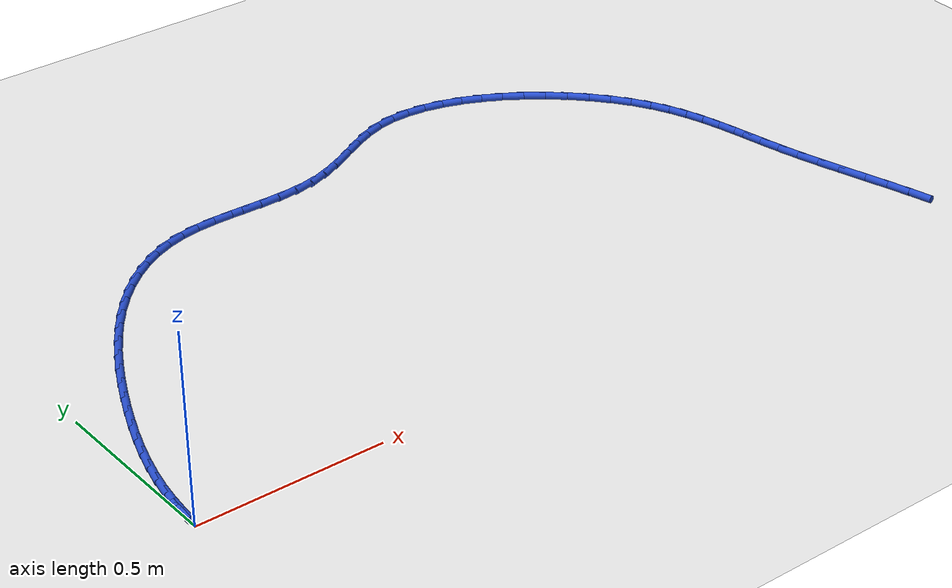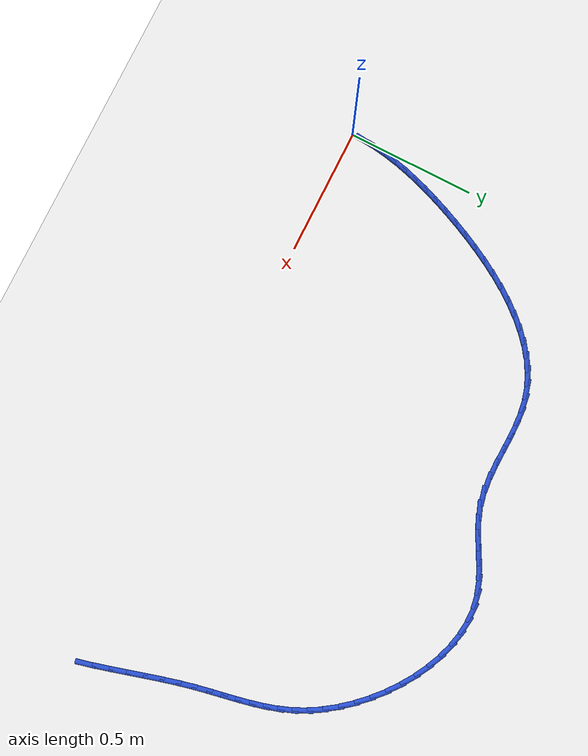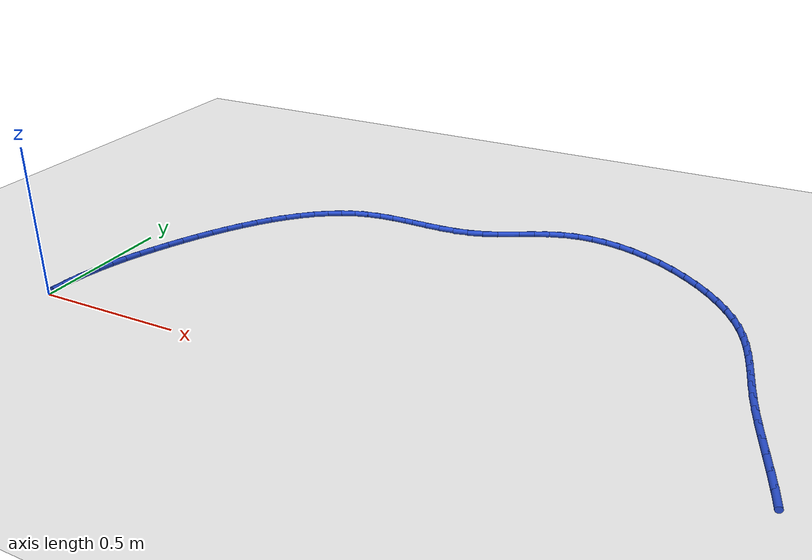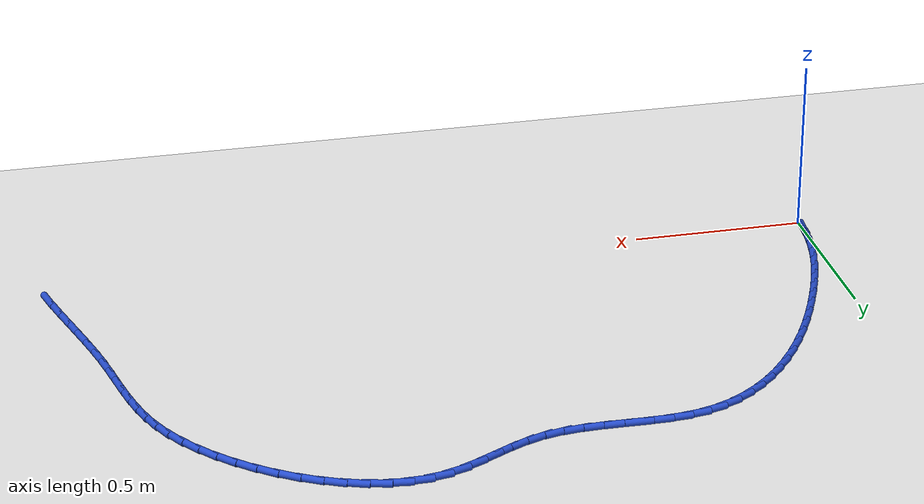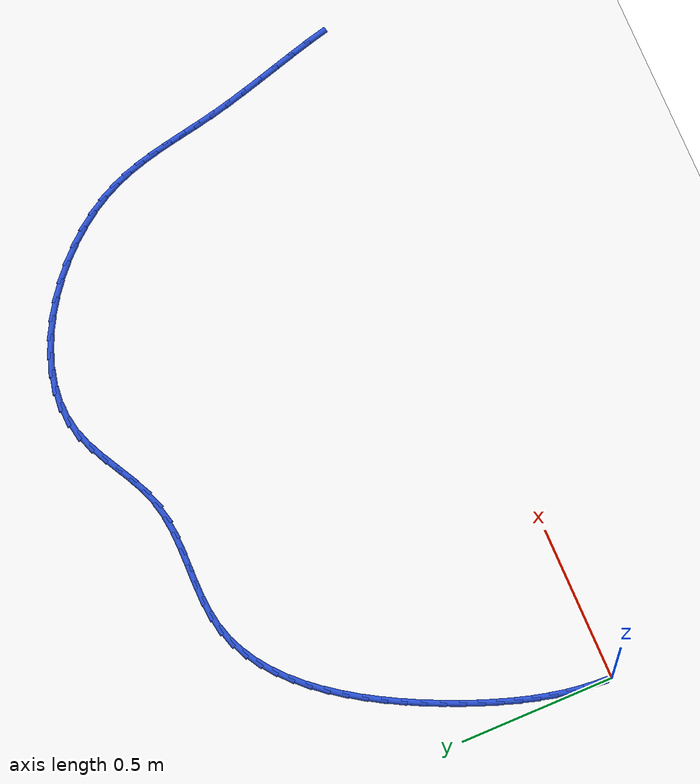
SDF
<sdf version="1.6">
 <world name="default">
  <model name="ground_plane">
   <static>1</static>
   <link name="link">
    <collision name="collision">
     <geometry><plane><normal>0 0 1</normal><size>100 100</size></plane></geometry>
     <surface><friction><ode><mu>100</mu><mu2>50</mu2></ode></friction></surface>
    </collision>
    <visual name="visual">
     <cast_shadows>0</cast_shadows>
     <geometry><plane><normal>0 0 1</normal><size>100 100</size></plane></geometry>
     <material>
      <script><uri>file://media/materials/scripts/gazebo.material</uri><name>Gazebo/WhiteGlow</name></script>
     </material>
    </visual>
   </link>
  </model>
  <model name="line">
   <link name="link_1">
    <pose>0.0024702620220672005 0.053703979515636616 0.01 0 1.57 1.4659111524721236</pose>
    <collision name="collision">
     <geometry><cylinder><radius>0.01</radius><length>0.08</length></cylinder></geometry>
    </collision>
    <visual name="visual">
     <material>
      <script><name>Gazebo/Blue</name><uri>file://media/materials/scripts/gazebo.material</uri></script>
     </material>
     <geometry><cylinder><radius>0.01</radius><length>0.08</length></cylinder></geometry>
    </visual>
   </link>
   <link name="link_2">
    <pose>0.008072004633430808 0.10691632495556776 0.01 0 1.57 1.4103766434216691</pose>
    <collision name="collision">
     <geometry><cylinder><radius>0.01</radius><length>0.08</length></cylinder></geometry>
    </collision>
    <visual name="visual">
     <material>
      <script><name>Gazebo/Blue</name><uri>file://media/materials/scripts/gazebo.material</uri></script>
     </material>
     <geometry><cylinder><radius>0.01</radius><length>0.08</length></cylinder></geometry>
    </visual>
   </link>
   <link name="link_3">
    <pose>0.016624376830137018 0.1597707019367585 0.01 0 1.57 1.3588987662731185</pose>
    <collision name="collision">
     <geometry><cylinder><radius>0.01</radius><length>0.08</length></cylinder></geometry>
    </collision>
    <visual name="visual">
     <material>
      <script><name>Gazebo/Blue</name><uri>file://media/materials/scripts/gazebo.material</uri></script>
     </material>
     <geometry><cylinder><radius>0.01</radius><length>0.08</length></cylinder></geometry>
    </visual>
   </link>
   <link name="link_4">
    <pose>0.027946527608231915 0.21240077607617325 0.01 0 1.57 1.311961752239816</pose>
    <collision name="collision">
     <geometry><cylinder><radius>0.01</radius><length>0.08</length></cylinder></geometry>
    </collision>
    <visual name="visual">
     <material>
      <script><name>Gazebo/Blue</name><uri>file://media/materials/scripts/gazebo.material</uri></script>
     </material>
     <geometry><cylinder><radius>0.01</radius><length>0.08</length></cylinder></geometry>
    </visual>
   </link>
   <link name="link_5">
    <pose>0.041857605963761674 0.264940212990777 0.01 0 1.57 1.2698681336667368</pose>
    <collision name="collision">
     <geometry><cylinder><radius>0.01</radius><length>0.08</length></cylinder></geometry>
    </collision>
    <visual name="visual">
     <material>
      <script><name>Gazebo/Blue</name><uri>file://media/materials/scripts/gazebo.material</uri></script>
     </material>
     <geometry><cylinder><radius>0.01</radius><length>0.08</length></cylinder></geometry>
    </visual>
   </link>
   <link name="link_6">
    <pose>0.05817676089277242 0.3175226782975345 0.01 0 1.57 1.2327599183159201</pose>
    <collision name="collision">
     <geometry><cylinder><radius>0.01</radius><length>0.08</length></cylinder></geometry>
    </collision>
    <visual name="visual">
     <material>
      <script><name>Gazebo/Blue</name><uri>file://media/materials/scripts/gazebo.material</uri></script>
     </material>
     <geometry><cylinder><radius>0.01</radius><length>0.08</length></cylinder></geometry>
    </visual>
   </link>
   <link name="link_7">
    <pose>0.07672314139131028 0.37028183761341027 0.01 0 1.57 1.2006482077327978</pose>
    <collision name="collision">
     <geometry><cylinder><radius>0.01</radius><length>0.08</length></cylinder></geometry>
    </collision>
    <visual name="visual">
     <material>
      <script><name>Gazebo/Blue</name><uri>file://media/materials/scripts/gazebo.material</uri></script>
     </material>
     <geometry><cylinder><radius>0.01</radius><length>0.08</length></cylinder></geometry>
    </visual>
   </link>
   <link name="link_8">
    <pose>0.09731589645542142 0.42335135655536915 0.01 0 1.57 1.1734300139271563</pose>
    <collision name="collision">
     <geometry><cylinder><radius>0.01</radius><length>0.08</length></cylinder></geometry>
    </collision>
    <visual name="visual">
     <material>
      <script><name>Gazebo/Blue</name><uri>file://media/materials/scripts/gazebo.material</uri></script>
     </material>
     <geometry><cylinder><radius>0.01</radius><length>0.08</length></cylinder></geometry>
    </visual>
   </link>
   <link name="link_9">
    <pose>0.11977459596349975 0.4768636681322571 0.01 0 1.57 1.148612272924412</pose>
    <collision name="collision">
     <geometry><cylinder><radius>0.01</radius><length>0.08</length></cylinder></geometry>
    </collision>
    <visual name="visual">
     <material>
      <script><name>Gazebo/Blue</name><uri>file://media/materials/scripts/gazebo.material</uri></script>
     </material>
     <geometry><cylinder><radius>0.01</radius><length>0.08</length></cylinder></geometry>
    </visual>
   </link>
   <link name="link_10">
    <pose>0.14398429058252019 0.530759436436861 0.01 0 1.57 1.121058087257345</pose>
    <collision name="collision">
     <geometry><cylinder><radius>0.01</radius><length>0.08</length></cylinder></geometry>
    </collision>
    <visual name="visual">
     <material>
      <script><name>Gazebo/Blue</name><uri>file://media/materials/scripts/gazebo.material</uri></script>
     </material>
     <geometry><cylinder><radius>0.01</radius><length>0.08</length></cylinder></geometry>
    </visual>
   </link>
   <link name="link_11">
    <pose>0.16996589858299926 0.5845814198002396 0.01 0 1.57 1.0897145456023534</pose>
    <collision name="collision">
     <geometry><cylinder><radius>0.01</radius><length>0.08</length></cylinder></geometry>
    </collision>
    <visual name="visual">
     <material>
      <script><name>Gazebo/Blue</name><uri>file://media/materials/scripts/gazebo.material</uri></script>
     </material>
     <geometry><cylinder><radius>0.01</radius><length>0.08</length></cylinder></geometry>
    </visual>
   </link>
   <link name="link_12">
    <pose>0.19775723454462726 0.6378228935376583 0.01 0 1.57 1.0540172984741825</pose>
    <collision name="collision">
     <geometry><cylinder><radius>0.01</radius><length>0.08</length></cylinder></geometry>
    </collision>
    <visual name="visual">
     <material>
      <script><name>Gazebo/Blue</name><uri>file://media/materials/scripts/gazebo.material</uri></script>
     </material>
     <geometry><cylinder><radius>0.01</radius><length>0.08</length></cylinder></geometry>
    </visual>
   </link>
   <link name="link_13">
    <pose>0.22739611304709406 0.6899771329643815 0.01 0 1.57 1.01327780354873</pose>
    <collision name="collision">
     <geometry><cylinder><radius>0.01</radius><length>0.08</length></cylinder></geometry>
    </collision>
    <visual name="visual">
     <material>
      <script><name>Gazebo/Blue</name><uri>file://media/materials/scripts/gazebo.material</uri></script>
     </material>
     <geometry><cylinder><radius>0.01</radius><length>0.08</length></cylinder></geometry>
    </visual>
   </link>
   <link name="link_14">
    <pose>0.2589203486700899 0.740537413395674 0.01 0 1.57 0.9666695715197356</pose>
    <collision name="collision">
     <geometry><cylinder><radius>0.01</radius><length>0.08</length></cylinder></geometry>
    </collision>
    <visual name="visual">
     <material>
      <script><name>Gazebo/Blue</name><uri>file://media/materials/scripts/gazebo.material</uri></script>
     </material>
     <geometry><cylinder><radius>0.01</radius><length>0.08</length></cylinder></geometry>
    </visual>
   </link>
   <link name="link_15">
    <pose>0.29236775599330467 0.7889970101468005 0.01 0 1.57 0.9132197264181084</pose>
    <collision name="collision">
     <geometry><cylinder><radius>0.01</radius><length>0.08</length></cylinder></geometry>
    </collision>
    <visual name="visual">
     <material>
      <script><name>Gazebo/Blue</name><uri>file://media/materials/scripts/gazebo.material</uri></script>
     </material>
     <geometry><cylinder><radius>0.01</radius><length>0.08</length></cylinder></geometry>
    </visual>
   </link>
   <link name="link_16">
    <pose>0.32777614959642865 0.8348491985330262 0.01 0 1.57 0.8518153249048454</pose>
    <collision name="collision">
     <geometry><cylinder><radius>0.01</radius><length>0.08</length></cylinder></geometry>
    </collision>
    <visual name="visual">
     <material>
      <script><name>Gazebo/Blue</name><uri>file://media/materials/scripts/gazebo.material</uri></script>
     </material>
     <geometry><cylinder><radius>0.01</radius><length>0.08</length></cylinder></geometry>
    </visual>
   </link>
   <link name="link_17">
    <pose>0.36518334405915176 0.8775872538696154 0.01 0 1.57 0.781240752126399</pose>
    <collision name="collision">
     <geometry><cylinder><radius>0.01</radius><length>0.08</length></cylinder></geometry>
    </collision>
    <visual name="visual">
     <material>
      <script><name>Gazebo/Blue</name><uri>file://media/materials/scripts/gazebo.material</uri></script>
     </material>
     <geometry><cylinder><radius>0.01</radius><length>0.08</length></cylinder></geometry>
    </visual>
   </link>
   <link name="link_18">
    <pose>0.4046271539611641 0.9167044514718328 0.01 0 1.57 0.7002716471659008</pose>
    <collision name="collision">
     <geometry><cylinder><radius>0.01</radius><length>0.08</length></cylinder></geometry>
    </collision>
    <visual name="visual">
     <material>
      <script><name>Gazebo/Blue</name><uri>file://media/materials/scripts/gazebo.material</uri></script>
     </material>
     <geometry><cylinder><radius>0.01</radius><length>0.08</length></cylinder></geometry>
    </visual>
   </link>
   <link name="link_19">
    <pose>0.4461453938821557 0.9516940666549436 0.01 0 1.57 0.6078586267191143</pose>
    <collision name="collision">
     <geometry><cylinder><radius>0.01</radius><length>0.08</length></cylinder></geometry>
    </collision>
    <visual name="visual">
     <material>
      <script><name>Gazebo/Blue</name><uri>file://media/materials/scripts/gazebo.material</uri></script>
     </material>
     <geometry><cylinder><radius>0.01</radius><length>0.08</length></cylinder></geometry>
    </visual>
   </link>
   <link name="link_20">
    <pose>0.48977587840181686 0.9820493747342124 0.01 0 1.57 0.5034296014314991</pose>
    <collision name="collision">
     <geometry><cylinder><radius>0.01</radius><length>0.08</length></cylinder></geometry>
    </collision>
    <visual name="visual">
     <material>
      <script><name>Gazebo/Blue</name><uri>file://media/materials/scripts/gazebo.material</uri></script>
     </material>
     <geometry><cylinder><radius>0.01</radius><length>0.08</length></cylinder></geometry>
    </visual>
   </link>
   <link name="link_21">
    <pose>0.5355564220998374 1.0072636510249038 0.01 0 1.57 0.387301732008298</pose>
    <collision name="collision">
     <geometry><cylinder><radius>0.01</radius><length>0.08</length></cylinder></geometry>
    </collision>
    <visual name="visual">
     <material>
      <script><name>Gazebo/Blue</name><uri>file://media/materials/scripts/gazebo.material</uri></script>
     </material>
     <geometry><cylinder><radius>0.01</radius><length>0.08</length></cylinder></geometry>
    </visual>
   </link>
   <link name="link_22">
    <pose>0.5835248395559076 1.0268301708422827 0.01 0 1.57 0.26110689228173994</pose>
    <collision name="collision">
     <geometry><cylinder><radius>0.01</radius><length>0.08</length></cylinder></geometry>
    </collision>
    <visual name="visual">
     <material>
      <script><name>Gazebo/Blue</name><uri>file://media/materials/scripts/gazebo.material</uri></script>
     </material>
     <geometry><cylinder><radius>0.01</radius><length>0.08</length></cylinder></geometry>
    </visual>
   </link>
   <link name="link_23">
    <pose>0.6337189023966624 1.040242381591643 0.01 0 1.57 0.13729842159292427</pose>
    <collision name="collision">
     <geometry><cylinder><radius>0.01</radius><length>0.08</length></cylinder></geometry>
    </collision>
    <visual name="visual">
     <material>
      <script><name>Gazebo/Blue</name><uri>file://media/materials/scripts/gazebo.material</uri></script>
     </material>
     <geometry><cylinder><radius>0.01</radius><length>0.08</length></cylinder></geometry>
    </visual>
   </link>
   <link name="link_24">
    <pose>0.6860565693803925 1.0474737570729504 0.01 0 1.57 0.04722119314021997</pose>
    <collision name="collision">
     <geometry><cylinder><radius>0.01</radius><length>0.08</length></cylinder></geometry>
    </collision>
    <visual name="visual">
     <material>
      <script><name>Gazebo/Blue</name><uri>file://media/materials/scripts/gazebo.material</uri></script>
     </material>
     <geometry><cylinder><radius>0.01</radius><length>0.08</length></cylinder></geometry>
    </visual>
   </link>
   <link name="link_25">
    <pose>0.7400742504634923 1.0500264340611476 0.01 0 1.57 -0.005806171457625335</pose>
    <collision name="collision">
     <geometry><cylinder><radius>0.01</radius><length>0.08</length></cylinder></geometry>
    </collision>
    <visual name="visual">
     <material>
      <script><name>Gazebo/Blue</name><uri>file://media/materials/scripts/gazebo.material</uri></script>
     </material>
     <geometry><cylinder><radius>0.01</radius><length>0.08</length></cylinder></geometry>
    </visual>
   </link>
   <link name="link_26">
    <pose>0.7952325725251341 1.0497061717870806 0.01 0 1.57 -0.02487744390240329</pose>
    <collision name="collision">
     <geometry><cylinder><radius>0.01</radius><length>0.08</length></cylinder></geometry>
    </collision>
    <visual name="visual">
     <material>
      <script><name>Gazebo/Blue</name><uri>file://media/materials/scripts/gazebo.material</uri></script>
     </material>
     <geometry><cylinder><radius>0.01</radius><length>0.08</length></cylinder></geometry>
    </visual>
   </link>
   <link name="link_27">
    <pose>0.8509921624444913 1.0483187294815959 0.01 0 1.57 -0.011623372053237093</pose>
    <collision name="collision">
     <geometry><cylinder><radius>0.01</radius><length>0.08</length></cylinder></geometry>
    </collision>
    <visual name="visual">
     <material>
      <script><name>Gazebo/Blue</name><uri>file://media/materials/scripts/gazebo.material</uri></script>
     </material>
     <geometry><cylinder><radius>0.01</radius><length>0.08</length></cylinder></geometry>
    </visual>
   </link>
   <link name="link_28">
    <pose>0.9068136471007365 1.0476698663755397 0.01 0 1.57 0.03423559021385555</pose>
    <collision name="collision">
     <geometry><cylinder><radius>0.01</radius><length>0.08</length></cylinder></geometry>
    </collision>
    <visual name="visual">
     <material>
      <script><name>Gazebo/Blue</name><uri>file://media/materials/scripts/gazebo.material</uri></script>
     </material>
     <geometry><cylinder><radius>0.01</radius><length>0.08</length></cylinder></geometry>
    </visual>
   </link>
   <link name="link_29">
    <pose>0.9621576533730429 1.0495653416997592 0.01 0 1.57 0.11445978817735519</pose>
    <collision name="collision">
     <geometry><cylinder><radius>0.01</radius><length>0.08</length></cylinder></geometry>
    </collision>
    <visual name="visual">
     <material>
      <script><name>Gazebo/Blue</name><uri>file://media/materials/scripts/gazebo.material</uri></script>
     </material>
     <geometry><cylinder><radius>0.01</radius><length>0.08</length></cylinder></geometry>
    </visual>
   </link>
   <link name="link_30">
    <pose>1.0164848081405833 1.0558109146850998 0.01 0 1.57 0.2307986612773934</pose>
    <collision name="collision">
     <geometry><cylinder><radius>0.01</radius><length>0.08</length></cylinder></geometry>
    </collision>
    <visual name="visual">
     <material>
      <script><name>Gazebo/Blue</name><uri>file://media/materials/scripts/gazebo.material</uri></script>
     </material>
     <geometry><cylinder><radius>0.01</radius><length>0.08</length></cylinder></geometry>
    </visual>
   </link>
   <link name="link_31">
    <pose>1.0692559860262698 1.0682114009225598 0.01 0 1.57 0.3628316639138965</pose>
    <collision name="collision">
     <geometry><cylinder><radius>0.01</radius><length>0.08</length></cylinder></geometry>
    </collision>
    <visual name="visual">
     <material>
      <script><name>Gazebo/Blue</name><uri>file://media/materials/scripts/gazebo.material</uri></script>
     </material>
     <geometry><cylinder><radius>0.01</radius><length>0.08</length></cylinder></geometry>
    </visual>
   </link>
   <link name="link_32">
    <pose>1.120199835873977 1.0875516813484964 0.01 0 1.57 0.4521577805124809</pose>
    <collision name="collision">
     <geometry><cylinder><radius>0.01</radius><length>0.08</length></cylinder></geometry>
    </collision>
    <visual name="visual">
     <material>
      <script><name>Gazebo/Blue</name><uri>file://media/materials/scripts/gazebo.material</uri></script>
     </material>
     <geometry><cylinder><radius>0.01</radius><length>0.08</length></cylinder></geometry>
    </visual>
   </link>
   <link name="link_33">
    <pose>1.1698226993489185 1.1116544553408756 0.01 0 1.57 0.4907094115721884</pose>
    <collision name="collision">
     <geometry><cylinder><radius>0.01</radius><length>0.08</length></cylinder></geometry>
    </collision>
    <visual name="visual">
     <material>
      <script><name>Gazebo/Blue</name><uri>file://media/materials/scripts/gazebo.material</uri></script>
     </material>
     <geometry><cylinder><radius>0.01</radius><length>0.08</length></cylinder></geometry>
    </visual>
   </link>
   <link name="link_34">
    <pose>1.2187713085610368 1.1378076841716365 0.01 0 1.57 0.4803665486293063</pose>
    <collision name="collision">
     <geometry><cylinder><radius>0.01</radius><length>0.08</length></cylinder></geometry>
    </collision>
    <visual name="visual">
     <material>
      <script><name>Gazebo/Blue</name><uri>file://media/materials/scripts/gazebo.material</uri></script>
     </material>
     <geometry><cylinder><radius>0.01</radius><length>0.08</length></cylinder></geometry>
    </visual>
   </link>
   <link name="link_35">
    <pose>1.2676923956202752 1.1632993291127174 0.01 0 1.57 0.4199105608600988</pose>
    <collision name="collision">
     <geometry><cylinder><radius>0.01</radius><length>0.08</length></cylinder></geometry>
    </collision>
    <visual name="visual">
     <material>
      <script><name>Gazebo/Blue</name><uri>file://media/materials/scripts/gazebo.material</uri></script>
     </material>
     <geometry><cylinder><radius>0.01</radius><length>0.08</length></cylinder></geometry>
    </visual>
   </link>
   <link name="link_36">
    <pose>1.3172326926365767 1.1854173514360575 0.01 0 1.57 0.3056813561750821</pose>
    <collision name="collision">
     <geometry><cylinder><radius>0.01</radius><length>0.08</length></cylinder></geometry>
    </collision>
    <visual name="visual">
     <material>
      <script><name>Gazebo/Blue</name><uri>file://media/materials/scripts/gazebo.material</uri></script>
     </material>
     <geometry><cylinder><radius>0.01</radius><length>0.08</length></cylinder></geometry>
    </visual>
   </link>
   <link name="link_37">
    <pose>1.3680387133652117 1.2014503229907112 0.01 0 1.57 0.15083406080529874</pose>
    <collision name="collision">
     <geometry><cylinder><radius>0.01</radius><length>0.08</length></cylinder></geometry>
    </collision>
    <visual name="visual">
     <material>
      <script><name>Gazebo/Blue</name><uri>file://media/materials/scripts/gazebo.material</uri></script>
     </material>
     <geometry><cylinder><radius>0.01</radius><length>0.08</length></cylinder></geometry>
    </visual>
   </link>
   <link name="link_38">
    <pose>1.4204937399221997 1.2094228805481355 0.01 0 1.57 0.0018828678930314288</pose>
    <collision name="collision">
     <geometry><cylinder><radius>0.01</radius><length>0.08</length></cylinder></geometry>
    </collision>
    <visual name="visual">
     <material>
      <script><name>Gazebo/Blue</name><uri>file://media/materials/scripts/gazebo.material</uri></script>
     </material>
     <geometry><cylinder><radius>0.01</radius><length>0.08</length></cylinder></geometry>
    </visual>
   </link>
   <link name="link_39">
    <pose>1.4742070375497112 1.2095240157111817 0.01 0 1.57 -0.13123226351530273</pose>
    <collision name="collision">
     <geometry><cylinder><radius>0.01</radius><length>0.08</length></cylinder></geometry>
    </collision>
    <visual name="visual">
     <material>
      <script><name>Gazebo/Blue</name><uri>file://media/materials/scripts/gazebo.material</uri></script>
     </material>
     <geometry><cylinder><radius>0.01</radius><length>0.08</length></cylinder></geometry>
    </visual>
   </link>
   <link name="link_40">
    <pose>1.5286463224550926 1.2023385284271273 0.01 0 1.57 -0.24892087508132285</pose>
    <collision name="collision">
     <geometry><cylinder><radius>0.01</radius><length>0.08</length></cylinder></geometry>
    </collision>
    <visual name="visual">
     <material>
      <script><name>Gazebo/Blue</name><uri>file://media/materials/scripts/gazebo.material</uri></script>
     </material>
     <geometry><cylinder><radius>0.01</radius><length>0.08</length></cylinder></geometry>
    </visual>
   </link>
   <link name="link_41">
    <pose>1.5832793108456922 1.1884512186432499 0.01 0 1.57 -0.3530087024128244</pose>
    <collision name="collision">
     <geometry><cylinder><radius>0.01</radius><length>0.08</length></cylinder></geometry>
    </collision>
    <visual name="visual">
     <material>
      <script><name>Gazebo/Blue</name><uri>file://media/materials/scripts/gazebo.material</uri></script>
     </material>
     <geometry><cylinder><radius>0.01</radius><length>0.08</length></cylinder></geometry>
    </visual>
   </link>
   <link name="link_42">
    <pose>1.6375737189288577 1.1684468863068271 0.01 0 1.57 -0.4458947573718623</pose>
    <collision name="collision">
     <geometry><cylinder><radius>0.01</radius><length>0.08</length></cylinder></geometry>
    </collision>
    <visual name="visual">
     <material>
      <script><name>Gazebo/Blue</name><uri>file://media/materials/scripts/gazebo.material</uri></script>
     </material>
     <geometry><cylinder><radius>0.01</radius><length>0.08</length></cylinder></geometry>
    </visual>
   </link>
   <link name="link_43">
    <pose>1.6909972629119363 1.142910331365137 0.01 0 1.57 -0.5300621413342944</pose>
    <collision name="collision">
     <geometry><cylinder><radius>0.01</radius><length>0.08</length></cylinder></geometry>
    </collision>
    <visual name="visual">
     <material>
      <script><name>Gazebo/Blue</name><uri>file://media/materials/scripts/gazebo.material</uri></script>
     </material>
     <geometry><cylinder><radius>0.01</radius><length>0.08</length></cylinder></geometry>
    </visual>
   </link>
   <link name="link_44">
    <pose>1.7430176590022743 1.112426353765457 0.01 0 1.57 -0.6078677326882518</pose>
    <collision name="collision">
     <geometry><cylinder><radius>0.01</radius><length>0.08</length></cylinder></geometry>
    </collision>
    <visual name="visual">
     <material>
      <script><name>Gazebo/Blue</name><uri>file://media/materials/scripts/gazebo.material</uri></script>
     </material>
     <geometry><cylinder><radius>0.01</radius><length>0.08</length></cylinder></geometry>
    </visual>
   </link>
   <link name="link_45">
    <pose>1.7931026234072207 1.0775797534550655 0.01 0 1.57 -0.6814989346478234</pose>
    <collision name="collision">
     <geometry><cylinder><radius>0.01</radius><length>0.08</length></cylinder></geometry>
    </collision>
    <visual name="visual">
     <material>
      <script><name>Gazebo/Blue</name><uri>file://media/materials/scripts/gazebo.material</uri></script>
     </material>
     <geometry><cylinder><radius>0.01</radius><length>0.08</length></cylinder></geometry>
    </visual>
   </link>
   <link name="link_46">
    <pose>1.8407198723341236 1.0389553303812396 0.01 0 1.57 -0.7530173569031033</pose>
    <collision name="collision">
     <geometry><cylinder><radius>0.01</radius><length>0.08</length></cylinder></geometry>
    </collision>
    <visual name="visual">
     <material>
      <script><name>Gazebo/Blue</name><uri>file://media/materials/scripts/gazebo.material</uri></script>
     </material>
     <geometry><cylinder><radius>0.01</radius><length>0.08</length></cylinder></geometry>
    </visual>
   </link>
   <link name="link_47">
    <pose>1.8853371219903292 0.9971378844912568 0.01 0 1.57 -0.8244459857805101</pose>
    <collision name="collision">
     <geometry><cylinder><radius>0.01</radius><length>0.08</length></cylinder></geometry>
    </collision>
    <visual name="visual">
     <material>
      <script><name>Gazebo/Blue</name><uri>file://media/materials/scripts/gazebo.material</uri></script>
     </material>
     <geometry><cylinder><radius>0.01</radius><length>0.08</length></cylinder></geometry>
    </visual>
   </link>
   <link name="link_48">
    <pose>1.9264220885831858 0.9527122157323962 0.01 0 1.57 -0.8978810955026748</pose>
    <collision name="collision">
     <geometry><cylinder><radius>0.01</radius><length>0.08</length></cylinder></geometry>
    </collision>
    <visual name="visual">
     <material>
      <script><name>Gazebo/Blue</name><uri>file://media/materials/scripts/gazebo.material</uri></script>
     </material>
     <geometry><cylinder><radius>0.01</radius><length>0.08</length></cylinder></geometry>
    </visual>
   </link>
   <link name="link_49">
    <pose>1.9634424883200396 0.9062631240519342 0.01 0 1.57 -0.9756228892819296</pose>
    <collision name="collision">
     <geometry><cylinder><radius>0.01</radius><length>0.08</length></cylinder></geometry>
    </collision>
    <visual name="visual">
     <material>
      <script><name>Gazebo/Blue</name><uri>file://media/materials/scripts/gazebo.material</uri></script>
     </material>
     <geometry><cylinder><radius>0.01</radius><length>0.08</length></cylinder></geometry>
    </visual>
   </link>
   <link name="link_50">
    <pose>1.9958660374082395 0.8583754093971487 0.01 0 1.57 -1.060271870818059</pose>
    <collision name="collision">
     <geometry><cylinder><radius>0.01</radius><length>0.08</length></cylinder></geometry>
    </collision>
    <visual name="visual">
     <material>
      <script><name>Gazebo/Blue</name><uri>file://media/materials/scripts/gazebo.material</uri></script>
     </material>
     <geometry><cylinder><radius>0.01</radius><length>0.08</length></cylinder></geometry>
    </visual>
   </link>
   <link name="link_51">
    <pose>2.0231648781899354 0.8096316110466054 0.01 0 1.57 -1.1486023233900664</pose>
    <collision name="collision">
     <geometry><cylinder><radius>0.01</radius><length>0.08</length></cylinder></geometry>
    </collision>
    <visual name="visual">
     <material>
      <script><name>Gazebo/Blue</name><uri>file://media/materials/scripts/gazebo.material</uri></script>
     </material>
     <geometry><cylinder><radius>0.01</radius><length>0.08</length></cylinder></geometry>
    </visual>
   </link>
   <link name="link_52">
    <pose>2.045294749601988 0.7603672690933424 0.01 0 1.57 -1.2277333038693055</pose>
    <collision name="collision">
     <geometry><cylinder><radius>0.01</radius><length>0.08</length></cylinder></geometry>
    </collision>
    <visual name="visual">
     <material>
      <script><name>Gazebo/Blue</name><uri>file://media/materials/scripts/gazebo.material</uri></script>
     </material>
     <geometry><cylinder><radius>0.01</radius><length>0.08</length></cylinder></geometry>
    </visual>
   </link>
   <link name="link_53">
    <pose>2.0631238789591433 0.7104518659935063 0.01 0 1.57 -1.2925295168011148</pose>
    <collision name="collision">
     <geometry><cylinder><radius>0.01</radius><length>0.08</length></cylinder></geometry>
    </collision>
    <visual name="visual">
     <material>
      <script><name>Gazebo/Blue</name><uri>file://media/materials/scripts/gazebo.material</uri></script>
     </material>
     <geometry><cylinder><radius>0.01</radius><length>0.08</length></cylinder></geometry>
    </visual>
   </link>
   <link name="link_54">
    <pose>2.0776216962873493 0.659703194452915 0.01 0 1.57 -1.340508740817944</pose>
    <collision name="collision">
     <geometry><cylinder><radius>0.01</radius><length>0.08</length></cylinder></geometry>
    </collision>
    <visual name="visual">
     <material>
      <script><name>Gazebo/Blue</name><uri>file://media/materials/scripts/gazebo.material</uri></script>
     </material>
     <geometry><cylinder><radius>0.01</radius><length>0.08</length></cylinder></geometry>
    </visual>
   </link>
   <link name="link_55">
    <pose>2.0897576316125557 0.6079390471773873 0.01 0 1.57 -1.370658697203069</pose>
    <collision name="collision">
     <geometry><cylinder><radius>0.01</radius><length>0.08</length></cylinder></geometry>
    </collision>
    <visual name="visual">
     <material>
      <script><name>Gazebo/Blue</name><uri>file://media/materials/scripts/gazebo.material</uri></script>
     </material>
     <geometry><cylinder><radius>0.01</radius><length>0.08</length></cylinder></geometry>
    </visual>
   </link>
   <link name="link_56">
    <pose>2.1005011149607116 0.5549772168727414 0.01 0 1.57 -1.3831136931654244</pose>
    <collision name="collision">
     <geometry><cylinder><radius>0.01</radius><length>0.08</length></cylinder></geometry>
    </collision>
    <visual name="visual">
     <material>
      <script><name>Gazebo/Blue</name><uri>file://media/materials/scripts/gazebo.material</uri></script>
     </material>
     <geometry><cylinder><radius>0.01</radius><length>0.08</length></cylinder></geometry>
    </visual>
   </link>
   <link name="link_57">
    <pose>2.1108215763577647 0.5006354962447952 0.01 0 1.57 -1.3788054896807842</pose>
    <collision name="collision">
     <geometry><cylinder><radius>0.01</radius><length>0.08</length></cylinder></geometry>
    </collision>
    <visual name="visual">
     <material>
      <script><name>Gazebo/Blue</name><uri>file://media/materials/scripts/gazebo.material</uri></script>
     </material>
     <geometry><cylinder><radius>0.01</radius><length>0.08</length></cylinder></geometry>
    </visual>
   </link>
   <link name="link_58">
    <pose>2.1216884458296663 0.44473167799936664 0.01 0 1.57 -1.3592135783048354</pose>
    <collision name="collision">
     <geometry><cylinder><radius>0.01</radius><length>0.08</length></cylinder></geometry>
    </collision>
    <visual name="visual">
     <material>
      <script><name>Gazebo/Blue</name><uri>file://media/materials/scripts/gazebo.material</uri></script>
     </material>
     <geometry><cylinder><radius>0.01</radius><length>0.08</length></cylinder></geometry>
    </visual>
   </link>
   <link name="link_59">
    <pose>2.1340711252400943 0.38708356574331243 0.01 0 1.57 -1.330765558171112</pose>
    <collision name="collision">
     <geometry><cylinder><radius>0.01</radius><length>0.08</length></cylinder></geometry>
    </collision>
    <visual name="visual">
     <material>
      <script><name>Gazebo/Blue</name><uri>file://media/materials/scripts/gazebo.material</uri></script>
     </material>
     <geometry><cylinder><radius>0.01</radius><length>0.08</length></cylinder></geometry>
    </visual>
   </link>
   <link name="link_60">
    <pose>2.1486219282574726 0.3276317014353968 0.01 0 1.57 -1.3097113741364006</pose>
    <collision name="collision">
     <geometry><cylinder><radius>0.01</radius><length>0.08</length></cylinder></geometry>
    </collision>
    <visual name="visual">
     <material>
      <script><name>Gazebo/Blue</name><uri>file://media/materials/scripts/gazebo.material</uri></script>
     </material>
     <geometry><cylinder><radius>0.01</radius><length>0.08</length></cylinder></geometry>
    </visual>
   </link>
   <link name="link_61">
    <pose>2.164890245403287 0.2667435460157922 0.01 0 1.57 -1.2981834936615757</pose>
    <collision name="collision">
     <geometry><cylinder><radius>0.01</radius><length>0.08</length></cylinder></geometry>
    </collision>
    <visual name="visual">
     <material>
      <script><name>Gazebo/Blue</name><uri>file://media/materials/scripts/gazebo.material</uri></script>
     </material>
     <geometry><cylinder><radius>0.01</radius><length>0.08</length></cylinder></geometry>
    </visual>
   </link>
   <link name="link_62">
    <pose>2.182185820638265 0.2048793227045289 0.01 0 1.57 -1.2953193401515608</pose>
    <collision name="collision">
     <geometry><cylinder><radius>0.01</radius><length>0.08</length></cylinder></geometry>
    </collision>
    <visual name="visual">
     <material>
      <script><name>Gazebo/Blue</name><uri>file://media/materials/scripts/gazebo.material</uri></script>
     </material>
     <geometry><cylinder><radius>0.01</radius><length>0.08</length></cylinder></geometry>
    </visual>
   </link>
   <link name="link_63">
    <pose>2.199818397923134 0.14249925472163724 0.01 0 1.57 -1.3008002204681655</pose>
    <collision name="collision">
     <geometry><cylinder><radius>0.01</radius><length>0.08</length></cylinder></geometry>
    </collision>
    <visual name="visual">
     <material>
      <script><name>Gazebo/Blue</name><uri>file://media/materials/scripts/gazebo.material</uri></script>
     </material>
     <geometry><cylinder><radius>0.01</radius><length>0.08</length></cylinder></geometry>
    </visual>
   </link>
   <link name="link_64">
    <pose>2.2170977212186225 0.08006356528714784 0.01 0 1.57 -1.314802208202308</pose>
    <collision name="collision">
     <geometry><cylinder><radius>0.01</radius><length>0.08</length></cylinder></geometry>
    </collision>
    <visual name="visual">
     <material>
      <script><name>Gazebo/Blue</name><uri>file://media/materials/scripts/gazebo.material</uri></script>
     </material>
     <geometry><cylinder><radius>0.01</radius><length>0.08</length></cylinder></geometry>
    </visual>
   </link>
   <link name="link_65">
    <pose>2.2333335344854572 0.018032477621090656 0.01 0 1.57 -1.338002534400772</pose>
    <collision name="collision">
     <geometry><cylinder><radius>0.01</radius><length>0.08</length></cylinder></geometry>
    </collision>
    <visual name="visual">
     <material>
      <script><name>Gazebo/Blue</name><uri>file://media/materials/scripts/gazebo.material</uri></script>
     </material>
     <geometry><cylinder><radius>0.01</radius><length>0.08</length></cylinder></geometry>
    </visual>
   </link>
   <link name="link_131">
    <pose>0.002508612429199669 0.053632711879200656 0.01 0 1.57 1.5240564680101256</pose>
    <collision name="collision">
     <geometry><cylinder><radius>0.01</radius><length>0.08</length></cylinder></geometry>
    </collision>
    <visual name="visual">
     <material>
      <script><name>Gazebo/Blue</name><uri>file://media/materials/scripts/gazebo.material</uri></script>
     </material>
     <geometry><cylinder><radius>0.01</radius><length>0.08</length></cylinder></geometry>
    </visual>
   </link>
  </model>
 </world>
</sdf>
